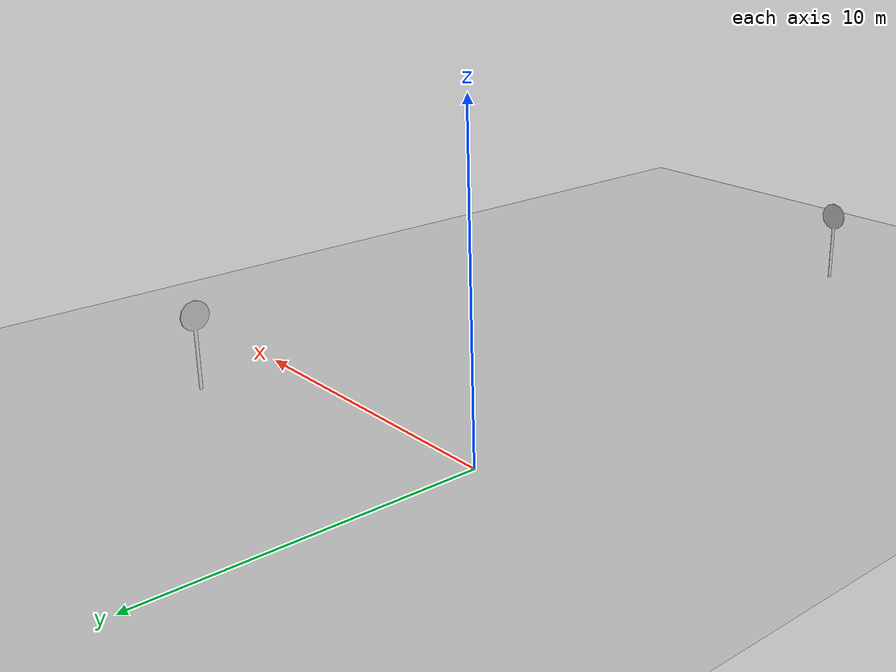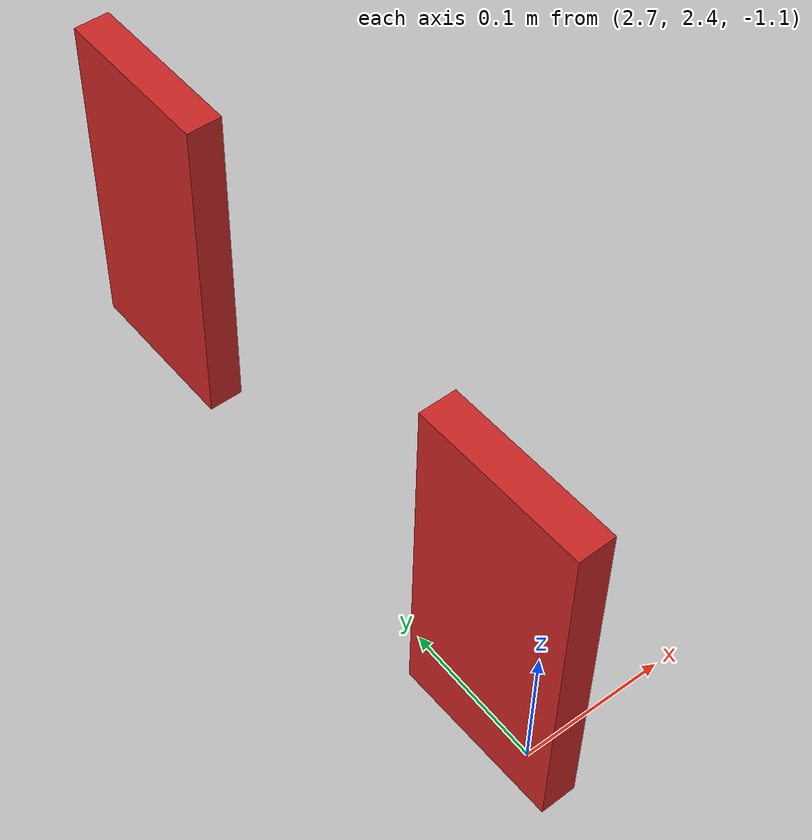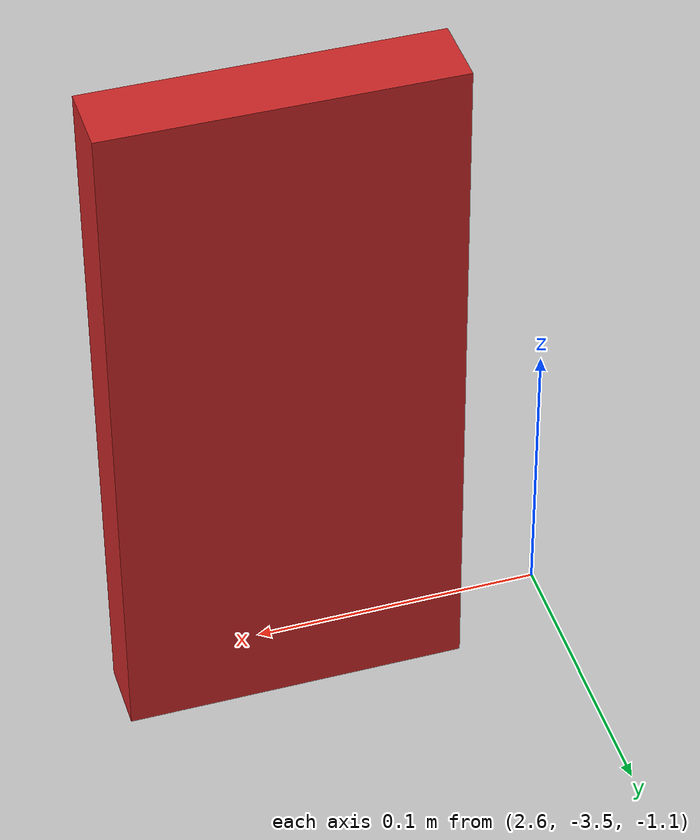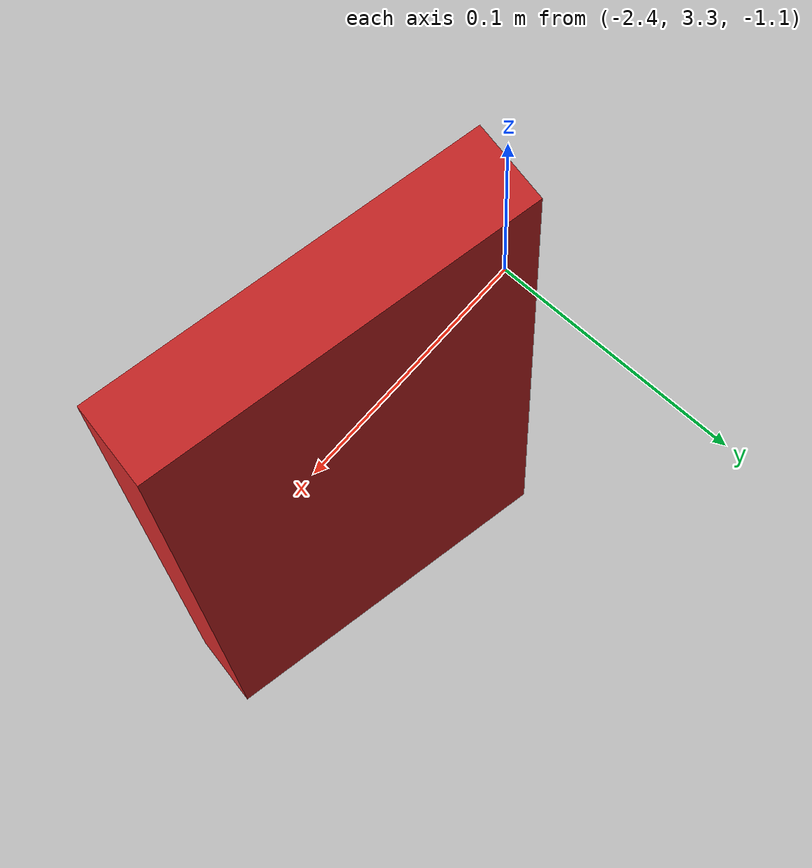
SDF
<?xml version="1.0" ?>
<sdf version="1.4">
  <world name="default">
    <gui fullscreen='0'>
      <camera name='user_camera'>
        <pose frame=''>-0.23904 -19.0487 0.901345 -0 0.071456 1.52819</pose>
        <view_controller>orbit</view_controller>
        <projection_type>perspective</projection_type>
      </camera>
    </gui>

    <physics type="ode">
      <gravity>0 0 -9.81</gravity>
      <ode>
        <solver>
          <type>world</type>
          <iters>500</iters>
          <sor>1.0</sor>
        </solver>
        <constraints>
          <cfm>0.0</cfm>
          <erp>0.2</erp>
          <contact_max_correcting_vel>0.1</contact_max_correcting_vel>
          <contact_surface_layer>0.0</contact_surface_layer>
        </constraints>
      </ode>
      <real_time_update_rate>1000</real_time_update_rate>
      <max_step_size>0.001</max_step_size>
    </physics>

    <include>
      <uri>model://speed_limit_80</uri>
      <name>speed_limit_80_1</name>
      <pose>9.634830 2.800253 -0.154945 0 0 0</pose>
    </include>

    <include>
      <uri>model://speed_limit_80</uri>
      <name>speed_limit_80_2</name>
      <pose>3.093306 -19.901224 -0.154945 0 0 -1.580482</pose>
    </include>

        <include>
      <uri>model://traffic_light</uri>
      <name>traffic_light1</name>
      <pose>2.725098 2.800253 -1.0 0 0 1.578703</pose>
    </include>

    <include>
      <uri>model://traffic_light</uri>
      <name>traffic_light2</name>
      <pose>2.687547 -3.509005 -1.0 0 0 0</pose>
    </include>

    <include>
      <uri>model://traffic_light</uri>
      <name>traffic_light3</name>
      <pose>2.703650 2.435987 -1.0 0 0 -1.545811</pose>
    </include>

    <include>
      <uri>model://traffic_light</uri>
      <name>traffic_light4</name>
      <pose>-2.291075 3.330095 -1.0 0 0 2.941129</pose>
    </include>

    <include>
      <uri>model://traffic_light</uri>
      <name>traffic_light5</name>
      <pose>11.196165 2.800253 -1.0 0 0 0</pose>
    </include>

    <!-- PLUGINS -->
    <plugin name="traffic_light_manager_world_plugin" filename="libtraffic_light_manager_world_plugin.so">
      <update_frequency>1.0</update_frequency>
      <model_traffic_lights>traffic_light1</model_traffic_lights>
    </plugin>

    <include>
      <uri>model://ground_plane</uri>
      <pose>0 0 0 0 0 0</pose>
    </include>

    <!-- A global light source -->
    <include>
      <uri>model://sun</uri>
    </include>

    <light name='user_point_light_0' type='point'>
      <pose frame=''>7.1 0.0 3.0 0 0 0</pose>
      <diffuse>0.2 0.2 0.2 1</diffuse>
      <specular>0.1 0.1 0.1 1</specular>
      <attenuation>
        <range>10</range>
        <constant>0.5</constant>
        <linear>0.01</linear>
        <quadratic>0.001</quadratic>
      </attenuation>
      <cast_shadows>0</cast_shadows>
      <direction>0 0 -1</direction>
    </light>

    <light name='user_point_light_1' type='point'>
      <pose frame=''>-7.1 0.0 3.0 0 0 0</pose>
      <diffuse>0.2 0.2 0.2 1</diffuse>
      <specular>0.1 0.1 0.1 1</specular>
      <attenuation>
        <range>10</range>
        <constant>0.5</constant>
        <linear>0.01</linear>
        <quadratic>0.001</quadratic>
      </attenuation>
      <cast_shadows>0</cast_shadows>
      <direction>0 0 -1</direction>
    </light>

    <light name='user_point_light_2' type='point'>
      <pose frame=''>7.1 -16.0 3.0 0 0 0</pose>
      <diffuse>0.2 0.2 0.2 1</diffuse>
      <specular>0.1 0.1 0.1 1</specular>
      <attenuation>
        <range>10</range>
        <constant>0.5</constant>
        <linear>0.01</linear>
        <quadratic>0.001</quadratic>
      </attenuation>
      <cast_shadows>0</cast_shadows>
      <direction>0 0 -1</direction>
    </light>

    <light name='user_point_light_3' type='point'>
      <pose frame=''>-7.1 -16.0 3.0 0 0 0</pose>
      <diffuse>0.2 0.2 0.2 1</diffuse>
      <specular>0.1 0.1 0.1 1</specular>
      <attenuation>
        <range>10.0</range>
        <constant>0.5</constant>
        <linear>0.01</linear>
        <quadratic>0.001</quadratic>
      </attenuation>
      <cast_shadows>0</cast_shadows>
      <direction>0 0 -1</direction>
    </light>

    <light name='user_point_light_4' type='point'>
      <pose frame=''>7.1 13.0 3.0 0 0 0</pose>
      <diffuse>0.2 0.2 0.2 1</diffuse>
      <specular>0.1 0.1 0.1 1</specular>
      <attenuation>
        <range>10.0</range>
        <constant>0.5</constant>
        <linear>0.01</linear>
        <quadratic>0.001</quadratic>
      </attenuation>
      <cast_shadows>0</cast_shadows>
      <direction>0 0 -1</direction>
    </light>

    <light name='user_point_light_5' type='point'>
      <pose frame=''>-7.1 13.0 3.0 0 0 0</pose>
      <diffuse>0.2 0.2 0.2 1</diffuse>
      <specular>0.1 0.1 0.1 1</specular>
      <attenuation>
        <range>10</range>
        <constant>0.5</constant>
        <linear>0.01</linear>
        <quadratic>0.001</quadratic>
      </attenuation>
      <cast_shadows>0</cast_shadows>
      <direction>0 0 -1</direction>
    </light>

  </world>
</sdf>

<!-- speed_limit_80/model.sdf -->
<sdf version='1.6'>
  <model name='speed_limit_80'>
    <link name='link_1'>
         <visual name='visual'>
        <pose frame=''>0 0 0 0 -0 0</pose>
        <geometry>
          <mesh>
            <uri>model://speed_limit_80/meshes/speed_limit_80.dae</uri>
            <scale>2.0 2.0 2.0</scale>
          </mesh>
        </geometry>
        <cast_shadows>0</cast_shadows>
        <transparency>0</transparency>
      </visual>
      <collision name='collision'>
        <laser_retro>0</laser_retro>
        <max_contacts>10</max_contacts>
        <pose frame=''>0 0 0 0 -0 0</pose>
        <geometry>
          <mesh>
            <uri>model://speed_limit_80/meshes/speed_limit_80.dae</uri>
            <scale>2.0 2.0 2.0</scale>
          </mesh>
        </geometry>
     </collision>
    </link>

    <static>1</static>
    <allow_auto_disable>1</allow_auto_disable>
  </model>

</sdf>

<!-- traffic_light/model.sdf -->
<sdf version='1.6'>
  <model name='traffic_light'>
    <link name='traffic_light'>
      <pose>0 0 0 0 0 0</pose>
      <collision name='collision'>
        <geometry>
          <box>
            <size>0.12 0.025 0.25</size>
          </box>
        </geometry>
      </collision>
      <visual name='visual'>
        <geometry>
          <box>
            <size>0.12 0.025 0.25</size>
          </box>
        </geometry>
        <material>
          <script>
            <uri>model://turtlebot3_autorace_2020/traffic_light/materials/scripts</uri>
            <uri>model://turtlebot3_autorace_2020/traffic_light/materials/textures</uri>
            <name>traffic_light_red</name>
          </script>
        </material>
      </visual>
    </link>
    <plugin name="traffic_light_plugin" filename="libtraffic_light_plugin.so">
    </plugin>
    <static>1</static>
  </model>
</sdf>
